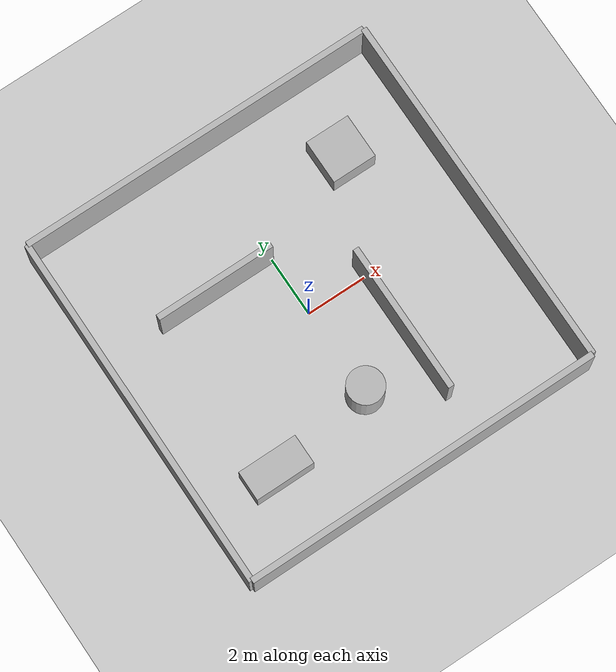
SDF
<?xml version="1.0" ?>
<sdf version="1.6">
  <world name="warehouse_world">

    <!-- Sun Light -->
    <include>
      <uri>model://sun</uri>
    </include>

    <!-- Ground Plane -->
    <include>
      <uri>model://ground_plane</uri>
    </include>

    <!-- Outer Enclosure Walls (12m x 12m) -->
    <model name="outer_walls">
      <static>true</static>

      <!-- North Wall -->
      <link name="north">
        <pose>0 6 1 0 0 0</pose>
        <collision name="col"><geometry><box><size>12 0.2 2</size></box></geometry></collision>
        <visual name="vis"><geometry><box><size>12 0.2 2</size></box></geometry></visual>
      </link>

      <!-- South Wall -->
      <link name="south">
        <pose>0 -6 1 0 0 0</pose>
        <collision name="col"><geometry><box><size>12 0.2 2</size></box></geometry></collision>
        <visual name="vis"><geometry><box><size>12 0.2 2</size></box></geometry></visual>
      </link>

      <!-- East Wall -->
      <link name="east">
        <pose>6 0 1 0 0 1.5708</pose>
        <collision name="col"><geometry><box><size>12 0.2 2</size></box></geometry></collision>
        <visual name="vis"><geometry><box><size>12 0.2 2</size></box></geometry></visual>
      </link>

      <!-- West Wall -->
      <link name="west">
        <pose>-6 0 1 0 0 1.5708</pose>
        <collision name="col"><geometry><box><size>12 0.2 2</size></box></geometry></collision>
        <visual name="vis"><geometry><box><size>12 0.2 2</size></box></geometry></visual>
      </link>
    </model>

    <!-- Interior Dividing Walls / Rooms -->
    <model name="inner_wall_1">
      <static>true</static>
      <pose>-2 2 1 0 0 0</pose>
      <link name="link">
        <collision name="col"><geometry><box><size>4 0.2 2</size></box></geometry></collision>
        <visual name="vis"><geometry><box><size>4 0.2 2</size></box></geometry></visual>
      </link>
    </model>

    <model name="inner_wall_2">
      <static>true</static>
      <pose>2 -2 1 0 0 1.5708</pose>
      <link name="link">
        <collision name="col"><geometry><box><size>5 0.2 2</size></box></geometry></collision>
        <visual name="vis"><geometry><box><size>5 0.2 2</size></box></geometry></visual>
      </link>
    </model>

    <!-- Obstacles & Pallets -->
    <model name="box_obstacle_1">
      <static>true</static>
      <pose>3.5 3.5 0.5 0 0 0</pose>
      <link name="link">
        <collision name="col"><geometry><box><size>1.5 1.5 1</size></box></geometry></collision>
        <visual name="vis"><geometry><box><size>1.5 1.5 1</size></box></geometry></visual>
      </link>
    </model>

    <model name="box_obstacle_2">
      <static>true</static>
      <pose>-3.5 -3.5 0.5 0 0 0</pose>
      <link name="link">
        <collision name="col"><geometry><box><size>2 1 1</size></box></geometry></collision>
        <visual name="vis"><geometry><box><size>2 1 1</size></box></geometry></visual>
      </link>
    </model>

    <model name="cylinder_obstacle">
      <static>true</static>
      <pose>0 -3 0.75 0 0 0</pose>
      <link name="link">
        <collision name="col"><geometry><cylinder><radius>0.6</radius><length>1.5</length></cylinder></geometry></collision>
        <visual name="vis"><geometry><cylinder><radius>0.6</radius><length>1.5</length></cylinder></geometry></visual>
      </link>
    </model>

  </world>
</sdf>
